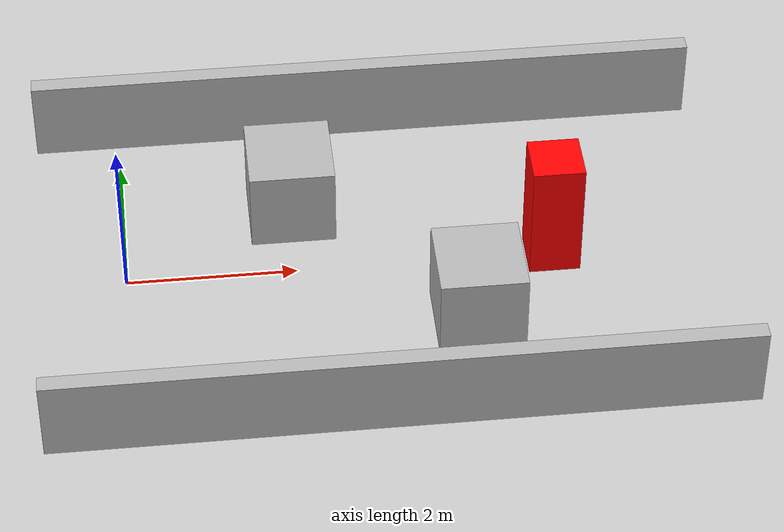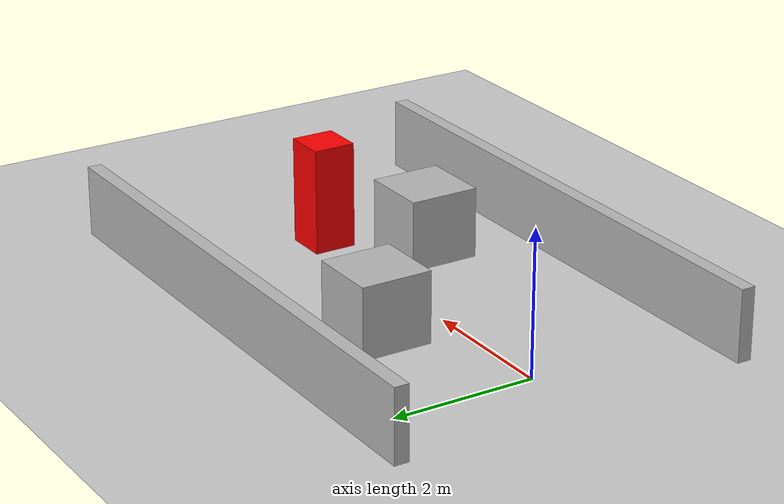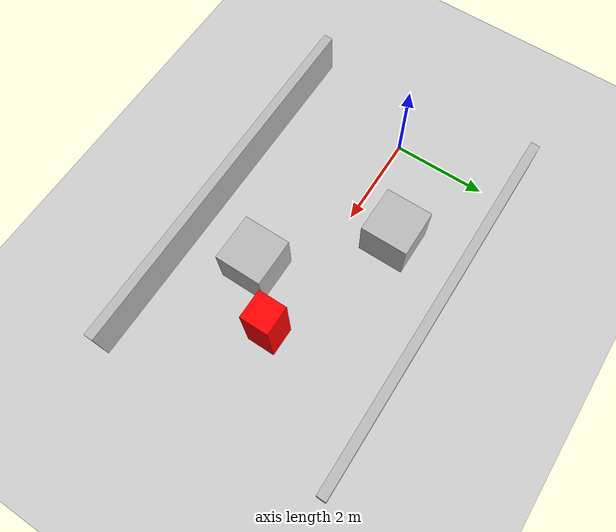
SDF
<?xml version="1.0" ?>
<sdf version="1.6">
  <world name="hcr_demo">
    <include>
      <uri>model://sun</uri>
    </include>
    <include>
      <uri>model://ground_plane</uri>
    </include>

    <!-- Static obstacles for mapping and visualization -->
    <model name="box_obstacle_1">
      <static>true</static>
      <pose>2 1 0.5 0 0 0</pose>
      <link name="link">
        <collision name="collision">
          <geometry>
            <box><size>1 1 1</size></box>
          </geometry>
        </collision>
        <visual name="visual">
          <geometry>
            <box><size>1 1 1</size></box>
          </geometry>
        </visual>
      </link>
    </model>

    <model name="box_obstacle_2">
      <static>true</static>
      <pose>4 -1 0.5 0 0 0</pose>
      <link name="link">
        <collision name="collision">
          <geometry>
            <box><size>1 1 1</size></box>
          </geometry>
        </collision>
        <visual name="visual">
          <geometry>
            <box><size>1 1 1</size></box>
          </geometry>
        </visual>
      </link>
    </model>

    <model name="wall_left">
      <static>true</static>
      <pose>3 2.5 0.5 0 0 0</pose>
      <link name="link">
        <collision name="collision">
          <geometry>
            <box><size>8 0.2 1</size></box>
          </geometry>
        </collision>
        <visual name="visual">
          <geometry>
            <box><size>8 0.2 1</size></box>
          </geometry>
        </visual>
      </link>
    </model>

    <model name="wall_right">
      <static>true</static>
      <pose>3 -2.5 0.5 0 0 0</pose>
      <link name="link">
        <collision name="collision">
          <geometry>
            <box><size>8 0.2 1</size></box>
          </geometry>
        </collision>
        <visual name="visual">
          <geometry>
            <box><size>8 0.2 1</size></box>
          </geometry>
        </visual>
      </link>
    </model>

    <!-- A tall box you can move manually in Gazebo to generate a dynamic target (optional). -->
    <model name="target_box">
      <static>false</static>
      <pose>5 0 0.75 0 0 0</pose>
      <link name="link">
        <gravity>false</gravity>
        <collision name="collision">
          <geometry>
            <box><size>0.6 0.6 1.5</size></box>
          </geometry>
        </collision>
        <visual name="visual">
          <geometry>
            <box><size>0.6 0.6 1.5</size></box>
          </geometry>
          <material>
            <ambient>1 0 0 1</ambient>
            <diffuse>1 0 0 1</diffuse>
          </material>
        </visual>
      </link>
    </model>

  </world>
</sdf>
